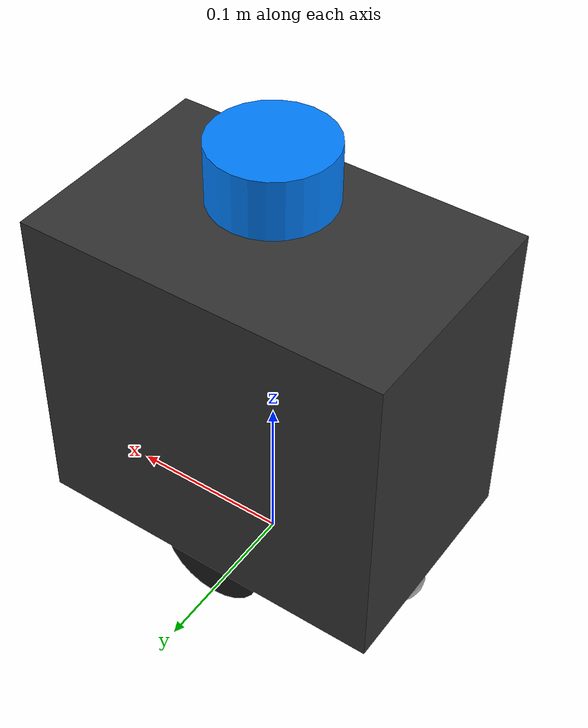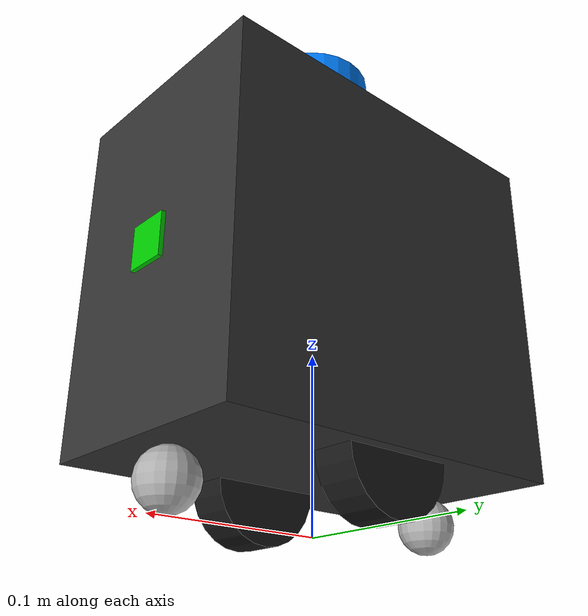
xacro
<?xml version="1.0"?>
<robot name="patrol_robot" xmlns:xacro="http://www.ros.org/wiki/xacro">

  <!-- ============================================================
       실측 후 여기만 수정하면 전체 반영됨
       단위: 모두 미터(m)
       ============================================================ -->
  <xacro:property name="base_length"       value="0.220"/>  <!-- 앞뒤 220mm -->
  <xacro:property name="base_width"        value="0.140"/>  <!-- 좌우 140mm -->
  <xacro:property name="base_height"       value="0.200"/>  <!-- 플레이트 두께 60mm (추정) -->

  <xacro:property name="wheel_radius"      value="0.0329"/> <!-- 바퀴 반지름 32.9mm (serial_bridge 캘리브레이션 값과 통일) -->
  <xacro:property name="wheel_width"       value="0.025"/>  <!-- 바퀴 폭 25mm (추정) -->
  <xacro:property name="wheel_separation"  value="0.100"/>  <!-- 좌우 바퀴 중심 간격 100mm (실측) -->

  <!-- base_link 원점 = 로봇 중심, 지면에서 wheel_radius 높이 -->
  <xacro:property name="base_z_offset"     value="${wheel_radius}"/>

  <!-- LiDAR: 로봇 상단 중앙 -->
  <xacro:property name="lidar_x"           value="0.0"/>
  <xacro:property name="lidar_y"           value="0.0"/>
  <xacro:property name="lidar_z"           value="${base_height + 0.020}"/>  <!-- 플레이트 위 20mm -->
  <xacro:property name="lidar_radius"      value="0.035"/>  <!-- YDLiDAR X4 외경 ~70mm -->
  <xacro:property name="lidar_height_val"  value="0.035"/>

  <!-- 카메라: 로봇 전면 -->
  <xacro:property name="camera_x"         value="${base_length/2 - 0.010}"/>
  <xacro:property name="camera_y"         value="0.0"/>
  <xacro:property name="camera_z"         value="${base_height * 0.5}"/>

  <!-- IMU: STM32 보드 위 (대략 중앙) -->
  <xacro:property name="imu_x"            value="0.0"/>
  <xacro:property name="imu_y"            value="0.0"/>
  <xacro:property name="imu_z"            value="${base_height * 0.5}"/>

  <!-- 재질 정의 -->
  <material name="dark_grey">
    <color rgba="0.2 0.2 0.2 1.0"/>
  </material>
  <material name="light_grey">
    <color rgba="0.7 0.7 0.7 1.0"/>
  </material>
  <material name="blue">
    <color rgba="0.0 0.5 1.0 1.0"/>
  </material>
  <material name="black">
    <color rgba="0.1 0.1 0.1 1.0"/>
  </material>
  <material name="red">
    <color rgba="0.8 0.0 0.0 1.0"/>
  </material>
  <material name="green">
    <color rgba="0.0 0.8 0.0 1.0"/>
  </material>

  <!-- ============================================================
       base_footprint: 지면 접촉점 (Nav2, SLAM 기준 프레임)
       ============================================================ -->
  <link name="base_footprint"/>

  <joint name="base_footprint_joint" type="fixed">
    <parent link="base_footprint"/>
    <child  link="base_link"/>
    <origin xyz="0 0 ${base_z_offset}" rpy="0 0 0"/>
  </joint>

  <!-- ============================================================
       base_link: 로봇 몸체 중심
       ============================================================ -->
  <link name="base_link">
    <visual>
      <origin xyz="0 0 ${base_height/2}" rpy="0 0 0"/>
      <geometry>
        <box size="${base_length} ${base_width} ${base_height}"/>
      </geometry>
      <material name="dark_grey"/>
    </visual>
    <collision>
      <origin xyz="0 0 ${base_height/2}" rpy="0 0 0"/>
      <geometry>
        <box size="${base_length} ${base_width} ${base_height}"/>
      </geometry>
    </collision>
    <inertial>
      <!-- 전체 로봇 질량 약 1.5kg 가정 -->
      <mass value="1.5"/>
      <origin xyz="0 0 ${base_height/2}" rpy="0 0 0"/>
      <inertia
        ixx="${1.5/12*(base_width*base_width + base_height*base_height)}"
        iyy="${1.5/12*(base_length*base_length + base_height*base_height)}"
        izz="${1.5/12*(base_length*base_length + base_width*base_width)}"
        ixy="0" ixz="0" iyz="0"/>
    </inertial>
  </link>

  <!-- ============================================================
       바퀴 매크로 정의
       ============================================================ -->
  <xacro:macro name="wheel" params="name x_pos y_pos reflect">
    <link name="${name}_wheel_link">
      <visual>
        <origin xyz="0 0 0" rpy="${pi/2} 0 0"/>
        <geometry>
          <cylinder radius="${wheel_radius}" length="${wheel_width}"/>
        </geometry>
        <material name="black"/>
      </visual>
      <collision>
        <origin xyz="0 0 0" rpy="${pi/2} 0 0"/>
        <geometry>
          <cylinder radius="${wheel_radius}" length="${wheel_width}"/>
        </geometry>
      </collision>
      <inertial>
        <!-- 바퀴 질량 약 0.1kg -->
        <mass value="0.1"/>
        <origin xyz="0 0 0" rpy="0 0 0"/>
        <inertia
          ixx="${0.1/12*(3*wheel_radius*wheel_radius + wheel_width*wheel_width)}"
          iyy="${0.1/12*(3*wheel_radius*wheel_radius + wheel_width*wheel_width)}"
          izz="${0.1/2*wheel_radius*wheel_radius}"
          ixy="0" ixz="0" iyz="0"/>
      </inertial>
    </link>

    <joint name="${name}_wheel_joint" type="continuous">
      <parent link="base_link"/>
      <child  link="${name}_wheel_link"/>
      <!-- x_pos: 앞뒤(0=중앙), y_pos: 좌우, z: 바닥면(base_link 원점 기준) -->
      <origin xyz="${x_pos} ${y_pos} ${-base_z_offset + wheel_radius}" rpy="0 0 0"/>
      <axis xyz="0 1 0"/>
      <dynamics damping="0.01" friction="0.1"/>
    </joint>
  </xacro:macro>

  <!-- 좌/우 바퀴 인스턴스 -->
  <xacro:wheel name="left"  x_pos="0" y_pos=" ${wheel_separation/2}" reflect="1"/>
  <xacro:wheel name="right" x_pos="0" y_pos="-${wheel_separation/2}" reflect="-1"/>

  <!-- ============================================================
       캐스터 (앞/뒤 보조 바퀴) - 마찰 없는 구형으로 단순화
       ============================================================ -->
  <xacro:macro name="caster" params="name x_pos">
    <link name="${name}_caster_link">
      <visual>
        <origin xyz="0 0 0" rpy="0 0 0"/>
        <geometry>
          <sphere radius="${wheel_radius * 0.5}"/>
        </geometry>
        <material name="light_grey"/>
      </visual>
      <collision>
        <origin xyz="0 0 0" rpy="0 0 0"/>
        <geometry>
          <sphere radius="${wheel_radius * 0.5}"/>
        </geometry>
      </collision>
      <inertial>
        <mass value="0.05"/>
        <origin xyz="0 0 0" rpy="0 0 0"/>
        <inertia
          ixx="${2.0/5*0.05*(wheel_radius*0.5)*(wheel_radius*0.5)}"
          iyy="${2.0/5*0.05*(wheel_radius*0.5)*(wheel_radius*0.5)}"
          izz="${2.0/5*0.05*(wheel_radius*0.5)*(wheel_radius*0.5)}"
          ixy="0" ixz="0" iyz="0"/>
      </inertial>
    </link>

    <joint name="${name}_caster_joint" type="fixed">
      <parent link="base_link"/>
      <child  link="${name}_caster_link"/>
      <origin xyz="${x_pos} 0 ${-base_z_offset + wheel_radius*0.5}" rpy="0 0 0"/>
    </joint>
  </xacro:macro>

  <xacro:caster name="front" x_pos=" ${base_length/2 - 0.020}"/>
  <xacro:caster name="rear"  x_pos="-${base_length/2 - 0.020}"/>

  <!-- ============================================================
       LiDAR (YDLiDAR X4)
       ============================================================ -->
  <link name="laser_frame">
    <visual>
      <origin xyz="0 0 ${lidar_height_val/2}" rpy="0 0 0"/>
      <geometry>
        <cylinder radius="${lidar_radius}" length="${lidar_height_val}"/>
      </geometry>
      <material name="blue"/>
    </visual>
    <collision>
      <origin xyz="0 0 ${lidar_height_val/2}" rpy="0 0 0"/>
      <geometry>
        <cylinder radius="${lidar_radius}" length="${lidar_height_val}"/>
      </geometry>
    </collision>
    <inertial>
      <mass value="0.1"/>
      <origin xyz="0 0 0" rpy="0 0 0"/>
      <inertia ixx="0.001" iyy="0.001" izz="0.001" ixy="0" ixz="0" iyz="0"/>
    </inertial>
  </link>

  <joint name="lidar_joint" type="fixed">
    <parent link="base_link"/>
    <child  link="laser_frame"/>
    <origin xyz="${lidar_x} ${lidar_y} ${lidar_z}" rpy="0 0 0"/>
  </joint>

  <!-- ============================================================
       카메라
       ============================================================ -->
  <link name="camera_link">
    <visual>
      <origin xyz="0 0 0" rpy="0 0 0"/>
      <geometry>
        <box size="0.025 0.025 0.025"/>
      </geometry>
      <material name="green"/>
    </visual>
    <collision>
      <origin xyz="0 0 0" rpy="0 0 0"/>
      <geometry>
        <box size="0.025 0.025 0.025"/>
      </geometry>
    </collision>
    <inertial>
      <mass value="0.05"/>
      <origin xyz="0 0 0" rpy="0 0 0"/>
      <inertia ixx="0.001" iyy="0.001" izz="0.001" ixy="0" ixz="0" iyz="0"/>
    </inertial>
  </link>

  <joint name="camera_joint" type="fixed">
    <parent link="base_link"/>
    <child  link="camera_link"/>
    <origin xyz="${camera_x} ${camera_y} ${camera_z}" rpy="0 0 0"/>
  </joint>

  <!-- 카메라 광학 프레임 (Z=앞, X=오른쪽 ROS 이미지 좌표계) -->
  <link name="camera_optical_link"/>
  <joint name="camera_optical_joint" type="fixed">
    <parent link="camera_link"/>
    <child  link="camera_optical_link"/>
    <origin xyz="0 0 0" rpy="${-pi/2} 0 ${-pi/2}"/>
  </joint>

  <!-- ============================================================
       IMU (MPU6050 on STM32)
       ============================================================ -->
  <link name="imu_link">
    <visual>
      <origin xyz="0 0 0" rpy="0 0 0"/>
      <geometry>
        <box size="0.020 0.020 0.005"/>
      </geometry>
      <material name="red"/>
    </visual>
    <inertial>
      <mass value="0.01"/>
      <origin xyz="0 0 0" rpy="0 0 0"/>
      <inertia ixx="0.0001" iyy="0.0001" izz="0.0001" ixy="0" ixz="0" iyz="0"/>
    </inertial>
  </link>

  <joint name="imu_joint" type="fixed">
    <parent link="base_link"/>
    <child  link="imu_link"/>
    <origin xyz="${imu_x} ${imu_y} ${imu_z}" rpy="0 0 0"/>
  </joint>

</robot>
